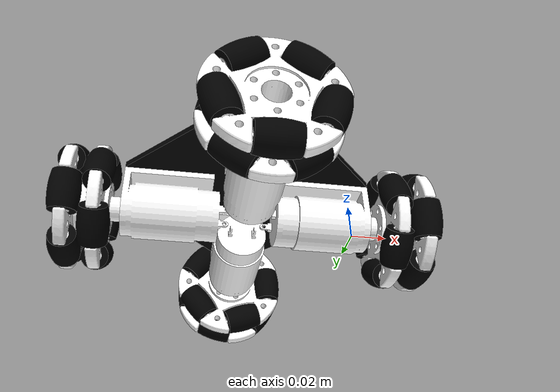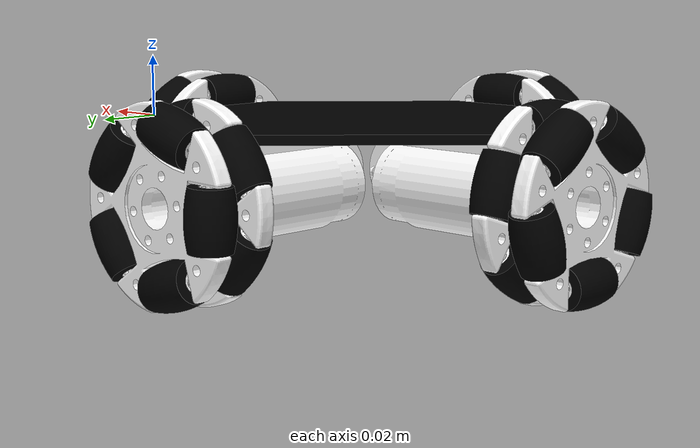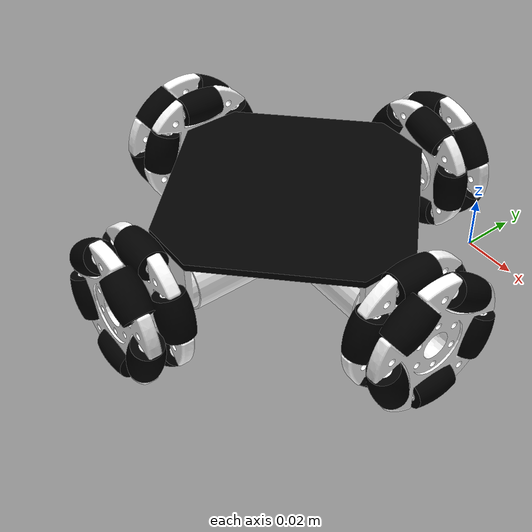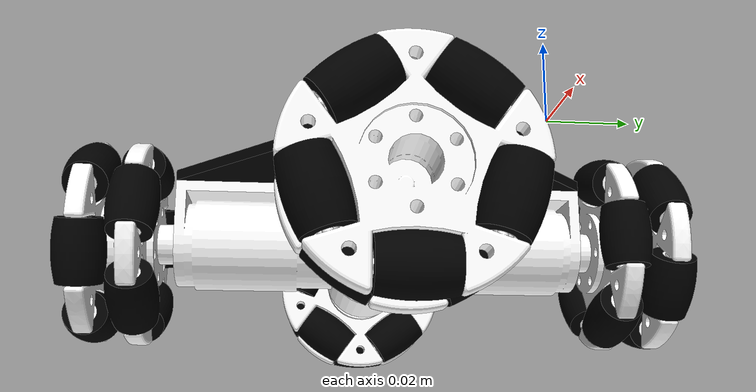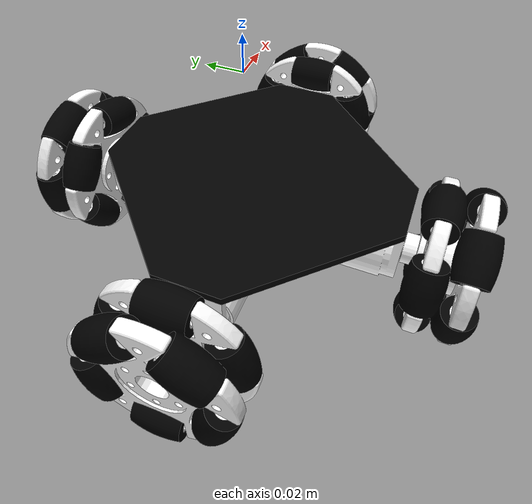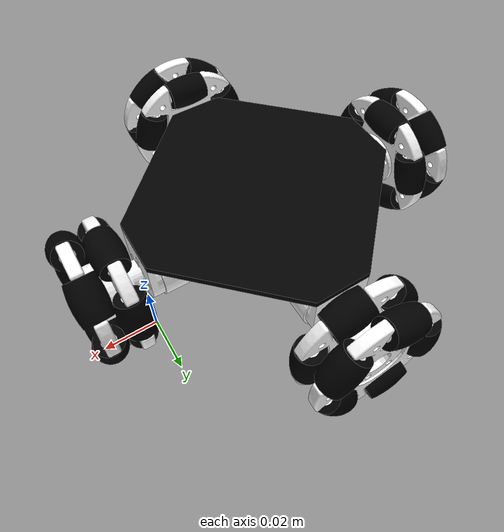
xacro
<?xml version="1.0"?>
<robot xmlns:xacro="http://www.ros.org/wiki/xacro"  name="robot">

	<xacro:include filename="robot_core_highres.xacro"/>
    <!--Uncomment to use low res mode-->
    <xacro:include filename="gazebo_control.xacro"/>

</robot>

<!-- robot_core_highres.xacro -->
<robot xmlns:xacro="http://www.ros.org/wiki/xacro">

	<material name="white">
        <color rgba="1 1 1 1"/>
    </material>

    <material name="orange">
        <color rgba="1 0.3 0.1 1"/>
    </material>

    <material name="blue">
        <color rgba="0.2 0.2 1 1"/>
    </material>

    <material name="black">
        <color rgba="0 0 0 1"/>
    </material>

	<!-- BASE LINK -->

    <link name="base_link">

    </link>

	<!-- CHASSIS LINK -->
	<joint name="chassis_joint" type="fixed">
        <parent link="base_link"/>
        <child link="chassis"/>
        <origin xyz="0 0 0"/>
    </joint>

	<link name="chassis">
		<inertial>
    		<origin xyz="0 0 0" rpy="0 0 0"/>
    		<mass value="0.029663"/>
    		<inertia ixx="2.3758E-05" ixy="-3.5155E-21" ixz="-2.2616E-23"
    			iyy="2.3758E-05" iyz="1.4972E-21" izz="4.7471E-05"/>
    	</inertial>

		<visual>
			<origin xyz="0 0 0" rpy="0 0 0"/>
			<geometry>
        		<mesh filename="package://holonomic/meshes/base_link.STL"/>
      		</geometry>
			<material name="black"/>
		</visual>

		<collision>
			<origin xyz="0 0 0" rpy="0 0 0"/>
			<geometry>
        		<mesh filename="package://holonomic/meshes/base_link.STL"/>
      		</geometry>
		</collision>
	</link>

	<gazebo reference="chassis">
        <material>Gazebo/Black</material>
    </gazebo>

	<!-- MOTOR1 LINK -->
	<joint name="motor1_joint" type="fixed">
    	<origin xyz="-0.10447 -0.034453 -0.00097125" rpy="0 0 0"/>
    	<parent link="chassis"/>
    	<child link="motor1_Link"/>
    	<axis xyz="0 0 0" />
  	</joint>

	<link name="motor1_Link">
		<inertial>
      		<origin xyz="0 0 0" rpy="0 0 0"/>
      		<mass value="0.027587"/>
      		<inertia ixx="2.5276E-06" ixy="5.6421E-10" ixz="-2.5995E-07"
        		iyy="4.8805E-06" iyz="-3.1417E-09" izz="4.8985E-06"/>
    	</inertial>

		<visual>
      		<origin xyz="0 0 0" rpy="0 0 0"/>
      		<geometry>
      			<mesh filename="package://holonomic/meshes/motor1_Link.STL"/>
      		</geometry>
      		<material name="white"/>
    	</visual>

		<collision>
			<origin xyz="0 0 0" rpy="0 0 0"/>
      		<geometry>
      			<mesh filename="package://holonomic/meshes/motor1_Link.STL"/>
      		</geometry>
		</collision>
	</link>

	<gazebo reference="motor1_Link">
        <material>Gazebo/Grey</material>
    </gazebo>

	<!-- WHEEL1 LINK -->
	<joint name="wheel1_joint" type="continuous">
    	<origin xyz="-0.0305 0 -0.0165" rpy="-1.5708 0 1.5708"/>
    	<parent link="motor1_Link"/>
    	<child link="wheel1_Link"/>
    	<axis xyz="0 0 1"/>
  	</joint>

	<link name="wheel1_Link">
		<inertial>
    		<origin xyz="0 0 0" rpy="0 0 0"/>
    		<mass value="0.020334"/>
    		<inertia ixx="3.0819E-06" ixy="8.6757E-22" ixz="9.2629E-21"
        		iyy="3.0819E-06" iyz="1.9171E-22" izz="5.7754E-06"/>
    	</inertial>

		<visual>
      		<origin xyz="0 0 0" rpy="0 0 0"/>
			<geometry>
        		<mesh filename="package://holonomic/meshes/wheel1_Link.STL"/>
      		</geometry>
      		<material name="white"/>
    	</visual>

		<collision>
			<origin xyz="0 0 0" rpy="0 0 0"/>
			<geometry>
        		<mesh filename="package://holonomic/meshes/wheel1_Link.STL"/>
      		</geometry>
		</collision>
	</link>

	<gazebo reference="wheel1_Link">
        <material>Gazebo/Grey</material>
    </gazebo>

	<!-- RUBBER1 LINK -->
	<joint name="rubber1_joint" type="fixed">
    	<origin xyz="0 0 0" rpy="0 0 0"/>
    	<parent link="wheel1_Link"/>
    	<child link="rubber1_Link"/>
    	<axis xyz="0 0 1"/>
  	</joint>

	<link name="rubber1_Link">
		<inertial>
    		<origin xyz="0 0 0" rpy="0 0 0"/>
      		<mass value="0.025624"/>
      		<inertia ixx="8.1584E-07" ixy="2.7512E-21" ixz="3.9264E-22"
        		iyy="8.1584E-07" iyz="6.7285E-24" izz="9.417E-07"/>
    	</inertial>

		<visual>
      		<origin xyz="0 0 0" rpy="0 0 0"/>
      		<geometry>
      			<mesh filename="package://holonomic/meshes/rubber1_Link.STL"/>
      		</geometry>
      		<material name="black"/>
    	</visual>

		<collision>
			<origin xyz="0 0 0" rpy="0 0 0"/>
      		<geometry>
      			<mesh filename="package://holonomic/meshes/rubber1_Link.STL"/>
      		</geometry>
		</collision>
	</link>

	<gazebo reference="rubber1_Link">
        <material>Gazebo/Black</material>
    </gazebo>

	<!-- MOTOR2 LINK -->
	<joint name="motor2_joint" type="fixed">
    	<origin xyz="-0.027471 -0.034453 -0.00097125" rpy="0 0 0"/>
    	<parent link="chassis"/>
    	<child link="motor2_Link"/>
    	<axis xyz="0 0 0"/>
  	</joint>

	<link name="motor2_Link">
		<inertial>
      		<origin xyz="0 0 0" rpy="0 0 0"/>
      		<mass value="0.027587"/>
      		<inertia ixx="2.5276E-06" ixy="5.6421E-10" ixz="2.5995E-07"
        		iyy="4.8805E-06" iyz="3.1417E-09" izz="4.8985E-06"/>
    	</inertial>

		<visual>
      		<origin xyz="0 0 0" rpy="0 0 0"/>
      		<geometry>
        		<mesh filename="package://holonomic/meshes/motor2_Link.STL"/>
      		</geometry>
      		<material name="white"/>
    	</visual>

		<collision>
			<origin xyz="0 0 0" rpy="0 0 0"/>
      		<geometry>
        		<mesh filename="package://holonomic/meshes/motor2_Link.STL"/>
      		</geometry>
		</collision>
	</link>

	<gazebo reference="motor2_Link">
        <material>Gazebo/Grey</material>
    </gazebo>

	<!-- WHEEL2 LINK -->
	<joint name="wheel2_joint" type="continuous">
    	<origin xyz="0.0305 0 -0.0165" rpy="1.5708 0 1.5708"/>
    	<parent link="motor2_Link"/>
    	<child link="wheel2_Link"/>
    	<axis xyz="0 0 1"/>
  	</joint>

	<link name="wheel2_Link">
		<inertial>
      		<origin xyz="0 0 0" rpy="0 0 0"/>
      		<mass value="0.020334"/>
      		<inertia ixx="3.0819E-06" ixy="1.4617E-22" ixz="-8.1538E-21"
        		iyy="3.0819E-06" iyz="-1.6374E-22" izz="5.7754E-06"/>
    	</inertial>

		<visual>
      		<origin xyz="0 0 0" rpy="0 0 0"/>
      		<geometry>
        		<mesh filename="package://holonomic/meshes/wheel2_Link.STL"/>
      		</geometry>
      		<material name="white"/>
    	</visual>

		<collision>
			<origin xyz="0 0 0" rpy="0 0 0"/>
      		<geometry>
        		<mesh filename="package://holonomic/meshes/wheel2_Link.STL"/>
      		</geometry>
		</collision>
	</link>

	<gazebo reference="wheel2_Link">
        <material>Gazebo/Grey</material>
    </gazebo>

	<!-- RUBBER2 LINK -->
	<joint name="rubber2_joint" type="fixed">
    	<origin xyz="0 0 0" rpy="0 0 0"/>
    	<parent link="wheel2_Link"/>
    	<child link="rubber2_Link"/>
    	<axis xyz="0 0 1"/>
  	</joint>

	<link name="rubber2_Link">
		<inertial>
      		<origin xyz="0 0 0" rpy="0 0 0"/>
      		<mass value="0.025624"/>
      		<inertia ixx="8.1584E-07" ixy="-1.8496E-21" ixz="-4.4163E-22"
        		iyy="8.1584E-07" iyz="2.1291E-24" izz="9.417E-07"/>
    	</inertial>

		<visual>
      		<origin xyz="0 0 0" rpy="0 0 0"/>
      		<geometry>
        		<mesh filename="package://holonomic/meshes/rubber2_Link.STL"/>
      		</geometry>
      		<material name="black"/>
    	</visual>

		<collision>
			<origin xyz="0 0 0" rpy="0 0 0"/>
      		<geometry>
        		<mesh filename="package://holonomic/meshes/rubber2_Link.STL"/>
      		</geometry>
		</collision>
	</link>

	<gazebo reference="rubber2_Link">
        <material>Gazebo/Black</material>
    </gazebo>

	<!-- MOTOR3 LINK -->
	<joint name="motor3_joint" type="fixed">
    	<origin xyz="-0.065971 0.0040471 -0.00097125" rpy="0 0 0"/>
    	<parent link="chassis"/>
    	<child link="motor3_Link"/>
    	<axis xyz="0 0 0"/>
  	</joint>

	<link name="motor3_Link">
		<inertial>
      		<origin xyz="0 0 0" rpy="0 0 0"/>
      		<mass value="0.027587"/>
      		<inertia ixx="4.8805E-06" ixy="-5.6421E-10" ixz="-3.1417E-09"
        		iyy="2.5276E-06" iyz="2.5995E-07" izz="4.8985E-06"/>
    	</inertial>

		<visual>
      		<origin xyz="0 0 0" rpy="0 0 0"/>
      		<geometry>
        		<mesh filename="package://holonomic/meshes/motor3_Link.STL"/>
      		</geometry>
      		<material name="white"/>
    	</visual>

		<collision>
			<origin xyz="0 0 0" rpy="0 0 0"/>
      		<geometry>
        		<mesh filename="package://holonomic/meshes/motor3_Link.STL"/>
      		</geometry>
		</collision>
	</link>

	<gazebo reference="motor3_Link">
        <material>Gazebo/Grey</material>
    </gazebo>

	<!-- WHEEL3 LINK -->
	<joint name="wheel3_joint" type="continuous">
    	<origin xyz="0 0.0305 -0.0165" rpy="-1.5708 0 0"/>
    	<parent link="motor3_Link"/>
    	<child link="wheel3_Link"/>
    	<axis xyz="0 0 1"/>
  	</joint>

	<link name="wheel3_Link">
		<inertial>
      		<origin xyz="0 0 0" rpy="0 0 0"/>
      		<mass value="0.020334"/>
      		<inertia ixx="3.0819E-06" ixy="8.2017E-13" ixz="-6.1659E-21"
        		iyy="3.0819E-06" iyz="8.252E-21" izz="5.7754E-06"/>
    	</inertial>

		<visual>
      		<origin xyz="0 0 0" rpy="0 0 0"/>
      		<geometry>
        		<mesh filename="package://holonomic/meshes/wheel3_Link.STL"/>
      		</geometry>
      		<material name="white"/>
    	</visual>

		<collision>
			<origin xyz="0 0 0" rpy="0 0 0"/>
      		<geometry>
        		<mesh filename="package://holonomic/meshes/wheel3_Link.STL"/>
      		</geometry>
		</collision>
	</link>

	<gazebo reference="wheel3_Link">
        <material>Gazebo/Grey</material>
    </gazebo>

	<!-- RUBBER3 LINK -->
	<joint name="rubber3_joint" type="fixed">
    	<origin xyz="0 0 0" rpy="0 0 0"/>
    	<parent link="wheel3_Link"/>
    	<child link="rubber3_Link"/>
    	<axis xyz="0 0 1"/>
  	</joint>

	<link name="rubber3_Link">
		<inertial>
      		<origin xyz="0 0 0" rpy="0 0 0"/>
      		<mass value="0.025624"/>
      		<inertia ixx="8.1584E-07" ixy="8.5348E-21" ixz="-3.0657E-22"
        		iyy="8.1584E-07" iyz="3.663E-22" izz="9.417E-07"/>
    	</inertial>

		<visual>
      		<origin xyz="0 0 0" rpy="0 0 0"/>
      		<geometry>
        		<mesh filename="package://holonomic/meshes/rubber3_Link.STL"/>
      		</geometry>
      		<material name="black"/>
    	</visual>

		<collision>
			<origin xyz="0 0 0" rpy="0 0 0"/>
      		<geometry>
        		<mesh filename="package://holonomic/meshes/rubber3_Link.STL"/>
      		</geometry>
		</collision>
	</link>

	<gazebo reference="rubber3_Link">
        <material>Gazebo/Black</material>
    </gazebo>

	<!-- MOTOR4 LINK -->
	<joint name="motor4_joint" type="fixed">
    	<origin xyz="-0.065971 -0.072953 -0.00097125" rpy="0 0 0"/>
    	<parent link="chassis"/>
    	<child link="motor4_Link"/>
    	<axis xyz="0 0 0"/>
  	</joint>

	<link name="motor4_Link">
		<inertial>
      		<origin xyz="0 0 0" rpy="0 0 0"/>
      		<mass value="0.027587"/>
      		<inertia ixx="4.8805E-06" ixy="-5.6421E-10" ixz="3.1417E-09"
        		iyy="2.5276E-06" iyz="-2.5995E-07" izz="4.8985E-06"/>
    	</inertial>

		<visual>
      		<origin xyz="0 0 0" rpy="0 0 0"/>
      		<geometry>
        		<mesh filename="package://holonomic/meshes/motor4_Link.STL" />
      		</geometry>
      		<material name="white"/>
    	</visual>

		<collision>
			<origin xyz="0 0 0" rpy="0 0 0"/>
      		<geometry>
        		<mesh filename="package://holonomic/meshes/motor4_Link.STL" />
      		</geometry>
		</collision>
	</link>

	<gazebo reference="motor4_Link">
        <material>Gazebo/Grey</material>
    </gazebo>

	<!-- WHEEL4 LINK -->
	<joint name="wheel4_joint" type="continuous">
    	<origin xyz="0 -0.0305 -0.0165" rpy="1.5708 0 0"/>
    	<parent link="motor4_Link"/>
    	<child link="wheel4_Link"/>
    	<axis xyz="0 0 1"/>
  	</joint>

	<link name="wheel4_Link">
		<inertial>
      		<origin xyz="0 0 0" rpy="0 0 0"/>
      		<mass value="0.020334"/>
      		<inertia ixx="3.0819E-06" ixy="9.4476E-22" ixz="1.9557E-20"
        		iyy="3.0819E-06" iyz="1.2749E-22" izz="5.7754E-06"/>
    	</inertial>

		<visual>
      		<origin xyz="0 0 0" rpy="0 0 0"/>
      		<geometry>
        		<mesh filename="package://holonomic/meshes/wheel4_Link.STL" />
      		</geometry>
      		<material name="white"/>
    	</visual>

		<collision>
			<origin xyz="0 0 0" rpy="0 0 0"/>
      		<geometry>
        		<mesh filename="package://holonomic/meshes/wheel4_Link.STL" />
      		</geometry>
		</collision>
	</link>

	<gazebo reference="wheel4_Link">
        <material>Gazebo/Grey</material>
    </gazebo>

	<!-- RUBBER4 LINK -->
	<joint name="rubber4_joint" type="fixed">
    	<origin xyz="0 0 0" rpy="0 0 0"/>
    	<parent link="wheel4_Link"/>
    	<child link="rubber4_Link"/>
    	<axis xyz="0 0 0" />
  	</joint>

	<link name="rubber4_Link">
		<inertial>
      		<origin xyz="0 0 0" rpy="0 0 0"/>
      		<mass value="0.025624"/>
      		<inertia ixx="8.1584E-07" ixy="-1.0418E-20" ixz="1.3067E-21"
        		iyy="8.1584E-07" iyz="-3.0399E-23" izz="9.417E-07"/>
    	</inertial>

		<visual>
      		<origin xyz="0 0 0" rpy="0 0 0"/>
      		<geometry>
        		<mesh filename="package://holonomic/meshes/rubber4_Link.STL"/>
      		</geometry>
      		<material name="black"/>
    	</visual>

		<collision>
			<origin xyz="0 0 0" rpy="0 0 0"/>
      		<geometry>
        		<mesh filename="package://holonomic/meshes/rubber4_Link.STL"/>
      		</geometry>
		</collision>
	</link>

	<gazebo reference="rubber4_Link">
        <material>Gazebo/Black</material>
    </gazebo>
</robot>
